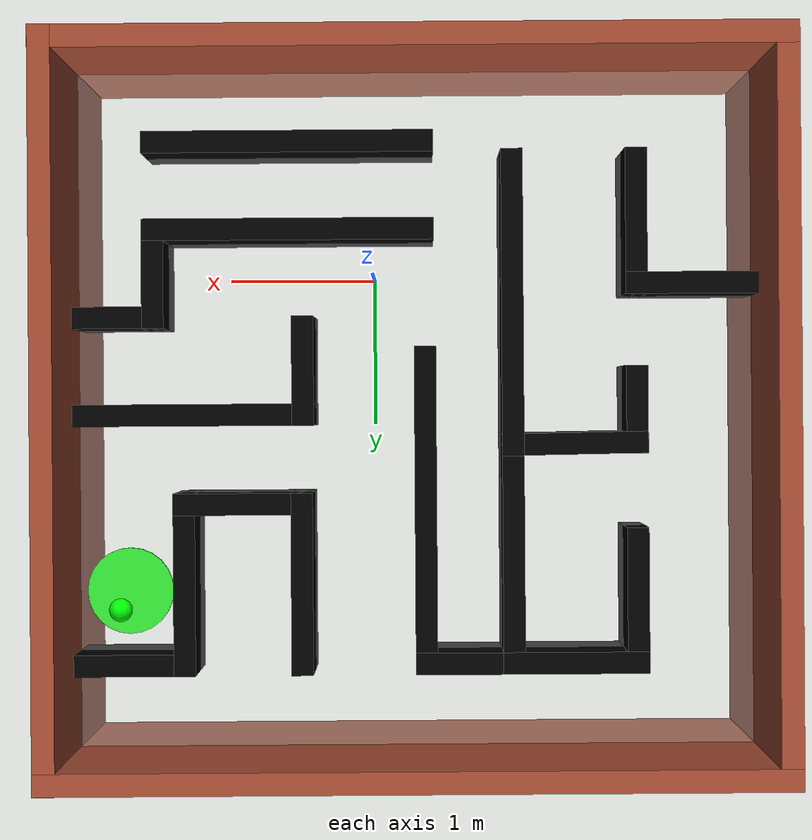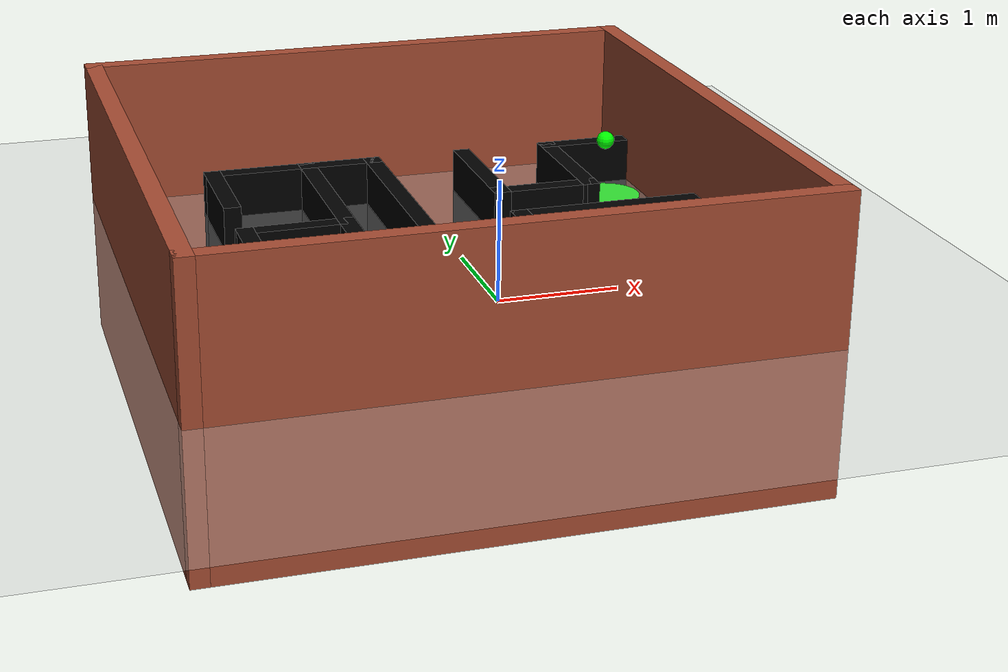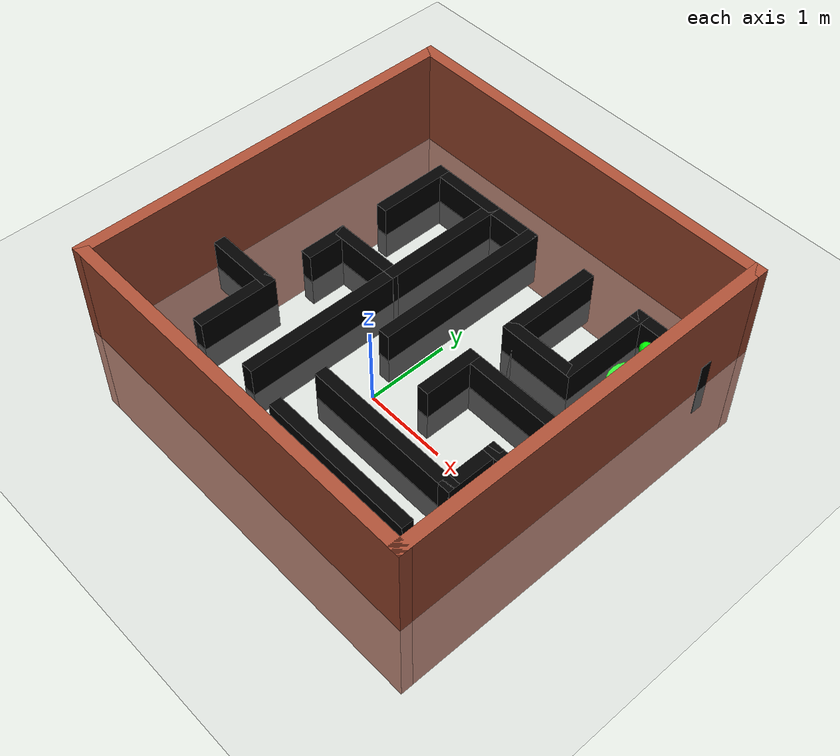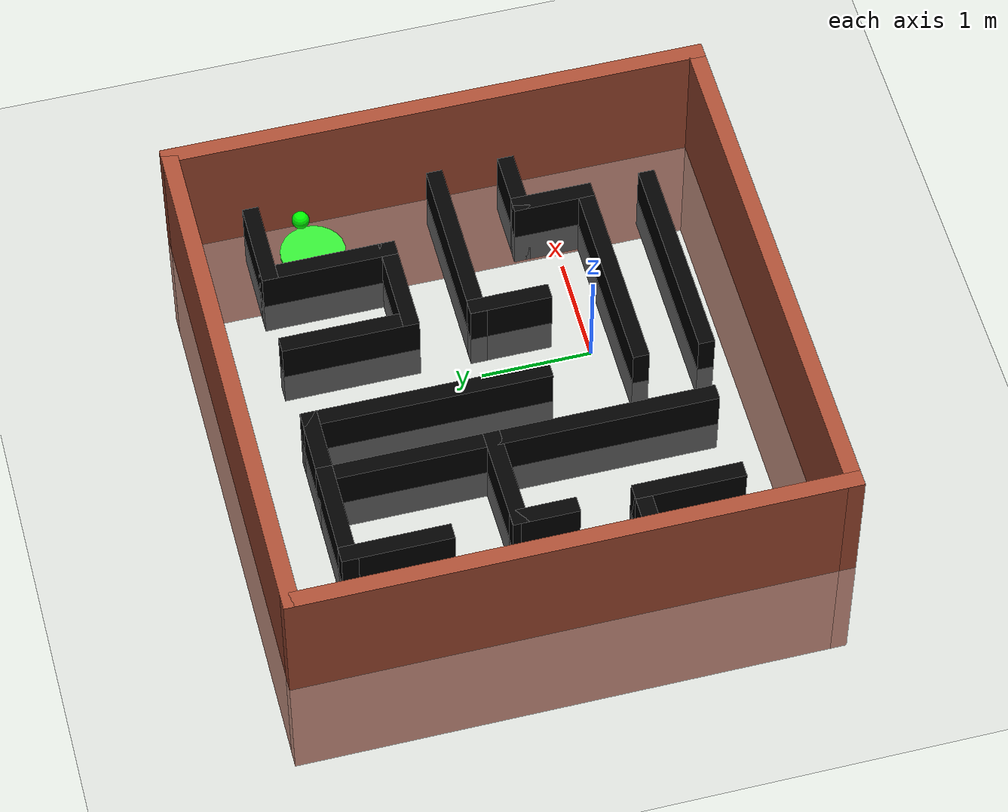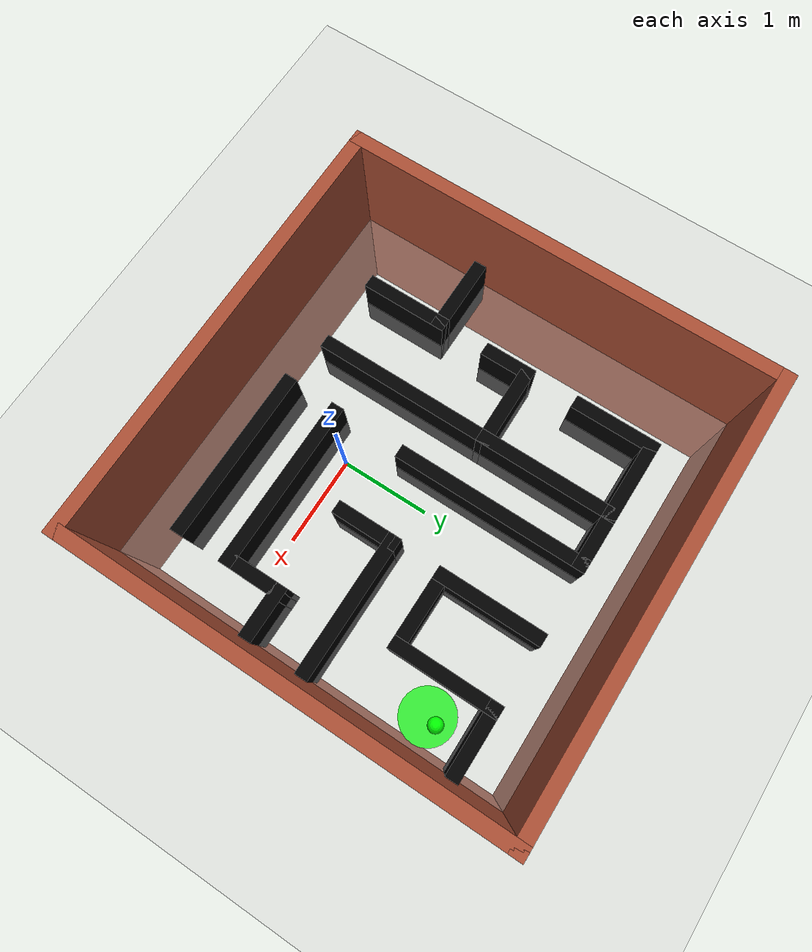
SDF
<sdf version='1.7'>
  <world name='default'>
    <include>
      <uri>model://sun</uri>
    </include>

    <include>
      <uri>model://ground_plane</uri>
    </include>

    <physics type="ode">
      <real_time_update_rate>1000.0</real_time_update_rate>
      <max_step_size>0.001</max_step_size>
      <real_time_factor>1</real_time_factor>
      <ode>
        <solver>
          <type>quick</type>
          <iters>150</iters>
        </solver>
      </ode>
    </physics>

    <plugin name="gazebo_ros_state" filename="libgazebo_ros_state.so">
      <ros><namespace>/</namespace></ros>
    </plugin>

    <model name='maze2'>
      <static>1</static>
      <pose>0.545 1.117 0 0 0 0</pose>

      <!-- Outter Walls -->
      <link name='Wall_2'><pose>-0.822 2.197 0 0 0 0</pose><collision name='Wall_2_Collision'><geometry><box><size>5 0.15 2.5</size></box></geometry></collision><visual name='Wall_2_Visual'><geometry><box><size>5 0.15 2.5</size></box></geometry><material><script><uri>file://media/materials/scripts/gazebo.material</uri><name>Gazebo/Bricks</name></script></material></visual></link>
      <link name='Wall_3'><pose>1.602 -0.227 0 0 0 -1.5708</pose><collision name='Wall_3_Collision'><geometry><box><size>5 0.15 2.5</size></box></geometry></collision><visual name='Wall_3_Visual'><geometry><box><size>5 0.15 2.5</size></box></geometry><material><script><uri>file://media/materials/scripts/gazebo.material</uri><name>Gazebo/Bricks</name></script></material></visual></link>
      <link name='Wall_4'><pose>-0.822 -2.652 0 0 0 3.14159</pose><collision name='Wall_4_Collision'><geometry><box><size>5 0.15 2.5</size></box></geometry></collision><visual name='Wall_4_Visual'><geometry><box><size>5 0.15 2.5</size></box></geometry><material><script><uri>file://media/materials/scripts/gazebo.material</uri><name>Gazebo/Bricks</name></script></material></visual></link>
      <link name='Wall_5'><pose>-3.247 -0.227 0 0 0 1.5708</pose><collision name='Wall_5_Collision'><geometry><box><size>5 0.15 2.5</size></box></geometry></collision><visual name='Wall_5_Visual'><geometry><box><size>5 0.15 2.5</size></box></geometry><material><script><uri>file://media/materials/scripts/gazebo.material</uri><name>Gazebo/Bricks</name></script></material></visual></link>

      <link name='Wall_10'><pose>-1.488 -0.950 0 0 0 1.5708</pose><collision name='Wall_10_Collision'><geometry><box><size>2.104 0.15 0.75</size></box></geometry></collision><visual name='Wall_10_Visual'><geometry><box><size>2.104 0.15 0.75</size></box></geometry><material><ambient>0 0 0 1</ambient><diffuse>0 0 0 1</diffuse><specular>0 0 0 1</specular><emissive>0 0 0 1</emissive></material></visual></link>
      <link name='Wall_11'><pose>-1.913 0.020 0 0 0 -3.127</pose><collision name='Wall_11_Collision'><geometry><box><size>1.000 0.15 0.75</size></box></geometry></collision><visual name='Wall_11_Visual'><geometry><box><size>1.000 0.15 0.75</size></box></geometry><material><ambient>0 0 0 1</ambient><diffuse>0 0 0 1</diffuse><specular>0 0 0 1</specular><emissive>0 0 0 1</emissive></material></visual></link>
      <link name='Wall_13'><pose>-1.913 1.522 0 0 0 0</pose><collision name='Wall_13_Collision'><geometry><box><size>1 0.15 0.75</size></box></geometry></collision><visual name='Wall_13_Visual'><geometry><box><size>1 0.15 0.75</size></box></geometry><material><ambient>0 0 0 1</ambient><diffuse>0 0 0 1</diffuse><specular>0 0 0 1</specular><emissive>0 0 0 1</emissive></material></visual></link>
      <link name='Wall_14'><pose>-1.488 0.774 0 0 0 -1.5708</pose><collision name='Wall_14_Collision'><geometry><box><size>1.645 0.15 0.75</size></box></geometry></collision><visual name='Wall_14_Visual'><geometry><box><size>1.645 0.15 0.75</size></box></geometry><material><ambient>0 0 0 1</ambient><diffuse>0 0 0 1</diffuse><specular>0 0 0 1</specular><emissive>0 0 0 1</emissive></material></visual></link>
      <link name='Wall_16'><pose>-1.188 1.522 0 0 0 0</pose><collision name='Wall_16_Collision'><geometry><box><size>0.75 0.15 0.75</size></box></geometry></collision><visual name='Wall_16_Visual'><geometry><box><size>0.75 0.15 0.75</size></box></geometry><material><ambient>0 0 0 1</ambient><diffuse>0 0 0 1</diffuse><specular>0 0 0 1</specular><emissive>0 0 0 1</emissive></material></visual></link>
      <link name='Wall_17'><pose>-0.888 0.472 0 0 0 -1.5708</pose><collision name='Wall_17_Collision'><geometry><box><size>2.25 0.15 0.75</size></box></geometry></collision><visual name='Wall_17_Visual'><geometry><box><size>2.25 0.15 0.75</size></box></geometry><material><ambient>0 0 0 1</ambient><diffuse>0 0 0 1</diffuse><specular>0 0 0 1</specular><emissive>0 0 0 1</emissive></material></visual></link>
      <link name='Wall_19'><pose>0.049 -1.460 0 0 0 0</pose><collision name='Wall_19_Collision'><geometry><box><size>2 0.15 0.75</size></box></geometry></collision><visual name='Wall_19_Visual'><geometry><box><size>2 0.15 0.75</size></box></geometry><material><ambient>0 0 0 1</ambient><diffuse>0 0 0 1</diffuse><specular>0 0 0 1</specular><emissive>0 0 0 1</emissive></material></visual></link>
      <link name='Wall_24'><pose>0.049 -2.060 0 0 0 0</pose><collision name='Wall_24_Collision'><geometry><box><size>2 0.15 0.75</size></box></geometry></collision><visual name='Wall_24_Visual'><geometry><box><size>2 0.15 0.75</size></box></geometry><material><ambient>0 0 0 1</ambient><diffuse>0 0 0 1</diffuse><specular>0 0 0 1</specular><emissive>0 0 0 1</emissive></material></visual></link>
      <link name='Wall_26'><pose>0.974 -1.160 0 0 0 1.5708</pose><collision name='Wall_26_Collision'><geometry><box><size>0.75 0.15 0.75</size></box></geometry></collision><visual name='Wall_26_Visual'><geometry><box><size>0.75 0.15 0.75</size></box></geometry><material><ambient>0 0 0 1</ambient><diffuse>0 0 0 1</diffuse><specular>0 0 0 1</specular><emissive>0 0 0 1</emissive></material></visual></link>
      <link name='Wall_27'><pose>1.274 -0.860 0 0 0 0</pose><collision name='Wall_27_Collision'><geometry><box><size>0.75 0.15 0.75</size></box></geometry></collision><visual name='Wall_27_Visual'><geometry><box><size>0.75 0.15 0.75</size></box></geometry><material><ambient>0 0 0 1</ambient><diffuse>0 0 0 1</diffuse><specular>0 0 0 1</specular><emissive>0 0 0 1</emissive></material></visual></link>
      <link name='Wall_30'><pose>-0.038 0.972 0 0 0 -1.5708</pose><collision name='Wall_30_Collision'><geometry><box><size>1.25 0.15 0.75</size></box></geometry></collision><visual name='Wall_30_Visual'><geometry><box><size>1.25 0.15 0.75</size></box></geometry><material><ambient>0 0 0 1</ambient><diffuse>0 0 0 1</diffuse><specular>0 0 0 1</specular><emissive>0 0 0 1</emissive></material></visual></link>
      <link name='Wall_35'><pose>0.365 0.422 0 0 0 0</pose><collision name='Wall_35_Collision'><geometry><box><size>0.956 0.15 0.75</size></box></geometry></collision><visual name='Wall_35_Visual'><geometry><box><size>0.956 0.15 0.75</size></box></geometry><material><ambient>0 0 0 1</ambient><diffuse>0 0 0 1</diffuse><specular>0 0 0 1</specular><emissive>0 0 0 1</emissive></material></visual></link>
      <link name='Wall_39'><pose>-0.049 -0.490 0 0 0 -1.5708</pose><collision name='Wall_39_Collision'><geometry><box><size>0.75 0.15 0.75</size></box></geometry></collision><visual name='Wall_39_Visual'><geometry><box><size>0.75 0.15 0.75</size></box></geometry><material><ambient>0 0 0 1</ambient><diffuse>0 0 0 1</diffuse><specular>0 0 0 1</specular><emissive>0 0 0 1</emissive></material></visual></link>
      <link name='Wall_41'><pose>0.750 -0.190 0 0 0 0</pose><collision name='Wall_41_Collision'><geometry><box><size>1.75 0.15 0.75</size></box></geometry></collision><visual name='Wall_41_Visual'><geometry><box><size>1.75 0.15 0.75</size></box></geometry><material><ambient>0 0 0 1</ambient><diffuse>0 0 0 1</diffuse><specular>0 0 0 1</specular><emissive>0 0 0 1</emissive></material></visual></link>
      <link name='Wall_45'><pose>-2.338 -0.212 0 0 0 -1.5708</pose><collision name='Wall_45_Collision'><geometry><box><size>0.603 0.15 0.75</size></box></geometry></collision><visual name='Wall_45_Visual'><geometry><box><size>0.603 0.15 0.75</size></box></geometry><material><ambient>0 0 0 1</ambient><diffuse>0 0 0 1</diffuse><specular>0 0 0 1</specular><emissive>0 0 0 1</emissive></material></visual></link>
      <link name='Wall_47'><pose>-2.338 1.097 0 0 0 -1.5708</pose><collision name='Wall_47_Collision'><geometry><box><size>1 0.15 0.75</size></box></geometry></collision><visual name='Wall_47_Visual'><geometry><box><size>1 0.15 0.75</size></box></geometry><material><ambient>0 0 0 1</ambient><diffuse>0 0 0 1</diffuse><specular>0 0 0 1</specular><emissive>0 0 0 1</emissive></material></visual></link>
      <link name='Wall_49'><pose>0.768 0.972 0 0 0 1.5708</pose><collision name='Wall_49_Collision'><geometry><box><size>1.25 0.15 0.75</size></box></geometry></collision><visual name='Wall_49_Visual'><geometry><box><size>1.25 0.15 0.75</size></box></geometry><material><ambient>0 0 0 1</ambient><diffuse>0 0 0 1</diffuse><specular>0 0 0 1</specular><emissive>0 0 0 1</emissive></material></visual></link>
      <link name='Wall_50'><pose>1.189 1.522 0 0 0 0</pose><collision name='Wall_50_Collision'><geometry><box><size>0.990 0.15 0.75</size></box></geometry></collision><visual name='Wall_50_Visual'><geometry><box><size>0.990 0.15 0.75</size></box></geometry><material><ambient>0 0 0 1</ambient><diffuse>0 0 0 1</diffuse><specular>0 0 0 1</specular><emissive>0 0 0 1</emissive></material></visual></link>
      <link name='Wall_7'><pose>-2.763 -1.077 0 0 0 0</pose><collision name='Wall_7_Collision'><geometry><box><size>1 0.15 0.75</size></box></geometry></collision><visual name='Wall_7_Visual'><geometry><box><size>1 0.15 0.75</size></box></geometry><material><ambient>0 0 0 1</ambient><diffuse>0 0 0 1</diffuse><specular>0 0 0 1</specular><emissive>0 0 0 1</emissive></material></visual></link>
      <link name='Wall_8'><pose>-2.338 -1.502 0 0 0 -1.5708</pose><collision name='Wall_8_Collision'><geometry><box><size>1 0.15 0.75</size></box></geometry></collision><visual name='Wall_8_Visual'><geometry><box><size>1 0.15 0.75</size></box></geometry><material><ambient>0 0 0 1</ambient><diffuse>0 0 0 1</diffuse><specular>0 0 0 1</specular><emissive>0 0 0 1</emissive></material></visual></link>
    </model>

    <model name='target_mark'>
      <static>1</static>
      <pose>1.72 2.15 0.01 0 0 0</pose>
      <link name='link_0'>
        <visual name='visual'>
          <geometry><cylinder><radius>0.3</radius><length>0.02</length></cylinder></geometry>
          <material>
            <ambient>0.1 0.8 0.1 1</ambient>
            <diffuse>0.2 0.9 0.2 1</diffuse>
          </material>
        </visual>
      </link>
    </model>

    <model name='target_beacon'>
      <static>1</static>
      <pose>1.73 2.245 0.5 0 0 0</pose>
      <link name='link_1'>
        <visual name='visual'>
          <geometry>
            <sphere>
              <radius>0.08</radius> </sphere>
          </geometry>
          <material>
            <ambient>0 1 0 1</ambient>
            <diffuse>0 1 0 1</diffuse>
            <specular>0.1 0.1 0.1 1</specular>
            <emissive>0 0.5 0 1</emissive> </material>
        </visual>
        <collision name='collision'>
          <geometry>
            <sphere><radius>0.15</radius></sphere>
          </geometry>
        </collision>
      </link>
    </model>

    <gui fullscreen='0'>
      <camera name='user_camera'>
        <pose>1.16 -3.42 17.94 0 1.22 1.51</pose>
      </camera>
    </gui>
  </world>
</sdf>
